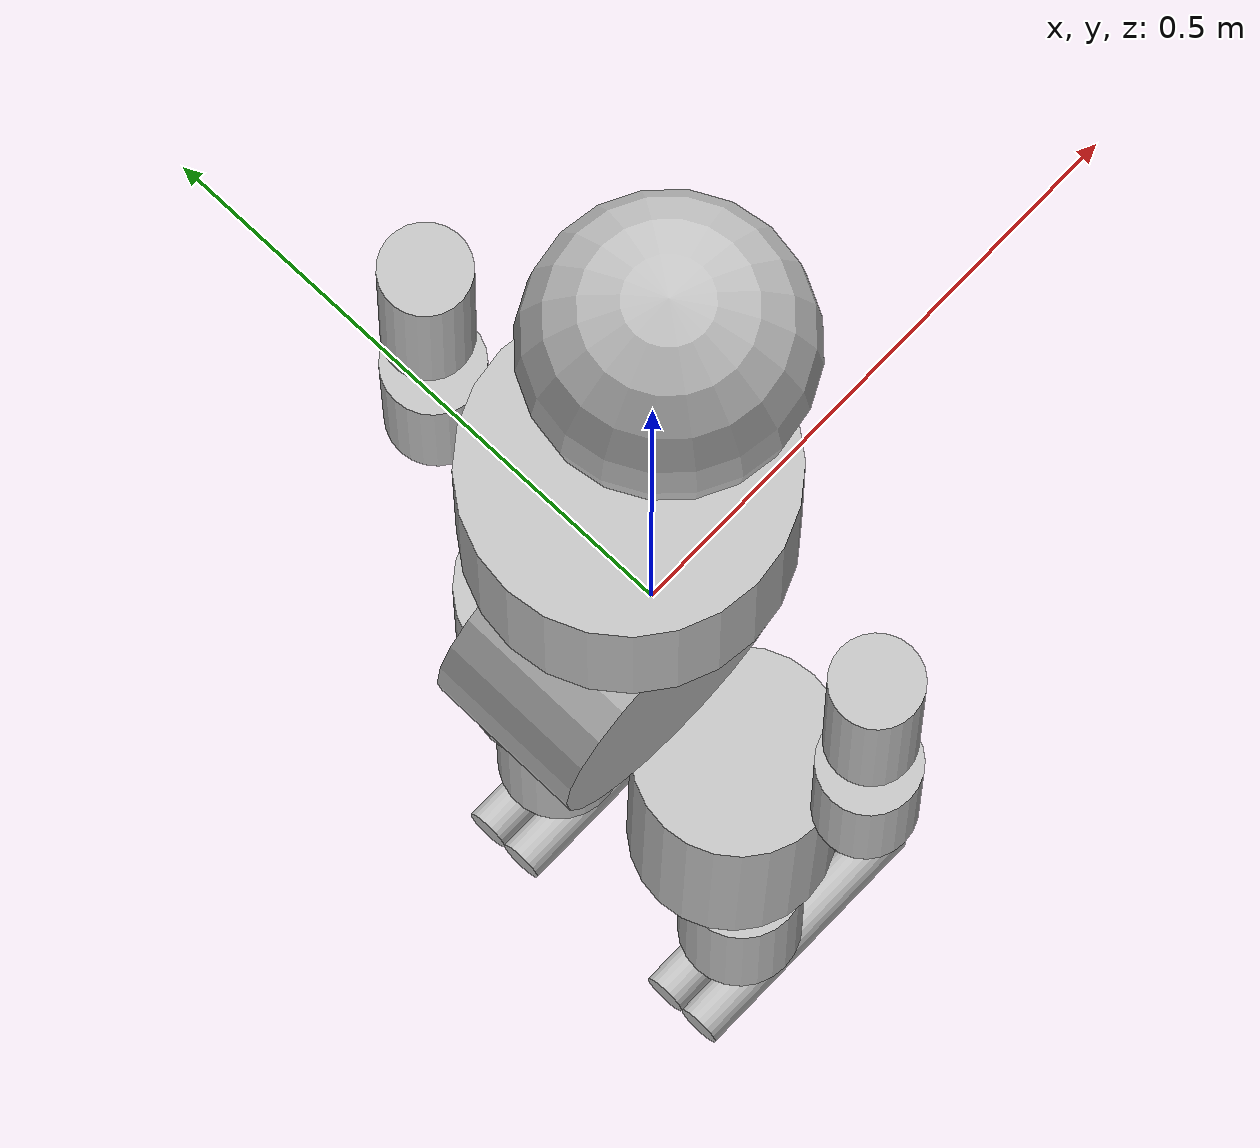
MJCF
<mujoco model="GR1T1_inspire_hand_simple_coll">
  <compiler angle="radian" autolimits="true" />
  <statistic center="-0.00685567 0 -0.14254" extent="1.76443" meansize="0.0362973" />
  <asset>
    <mesh file="/home/mao/Github_Project/humanoid-gym/resources/robots/gr1t1/urdf/../meshes/IMU_link.STL" name="IMU_link" />
  </asset>
  <worldbody>
    <body name="base_link">
      <inertial diaginertia="0.0357335 0.0311265 0.01048" mass="3.84" pos="-0.06584 -9.765e-05 -0.01434" quat="0.384085 0.384189 -0.593878 0.593453" />
      <joint name="base_link_free_joint" type="free" />
      <geom name="base_link.STL" pos="-0.0425829 0.000370042 0.00921009" quat="0.706838 -0.707359 0.00477667 0" rgba="0.752941 0.752941 0.752941 1" size="0.122394 0.0685504" type="cylinder" />
      <body name="left_thigh_roll_link" pos="-0.0025 0.105 -0.0276">
        <inertial diaginertia="0.00250664 0.0024263 0.00154406" mass="1.45" pos="-0.0327 9.169e-05 0.002323" quat="-0.0333877 0.695218 -0.0328245 0.717272" />
        <joint axis="1 0 0" name="left_hip_roll_joint" pos="0 0 0" range="-0.09 0.79" />
        <body name="left_thigh_yaw_link">
          <inertial diaginertia="0.0187495 0.0155538 0.00552366" mass="3.17" pos="-0.00019288 0.03547 -0.1073" quat="0.695263 0.0885308 -0.105597 0.705422" />
          <joint axis="0 0 1" name="left_hip_yaw_joint" pos="0 0 0" range="-0.7 0.7" />
          <body name="left_thigh_pitch_link" pos="0 0.0223 -0.1405">
            <inertial diaginertia="0.0726805 0.0722025 0.021167" mass="7.99" pos="0.001419 -0.02869 -0.05999" quat="0.563485 -0.0288779 0.0157908 0.82547" />
            <joint axis="0 1 0" name="left_hip_pitch_joint" pos="0 0 0" range="-1.75 0.7" />
            <geom name="left_thigh_pitch_link.STL" pos="0.000700051 -0.0301597 -0.167056" rgba="0.752941 0.752941 0.752941 1" size="0.0858769 0.124914" type="cylinder" />
            <body name="left_shank_pitch_link" pos="0 -0.0213 -0.36">
              <inertial diaginertia="0.00991684 0.0099128 0.000948263" mass="1.93" pos="0.001724 -3.024e-05 -0.1128" quat="0.933705 -0.00658684 -0.00149886 -0.357979" />
              <joint axis="0 1 0" name="left_knee_pitch_joint" pos="0 0 0" range="-0.09 1.92" />
              <geom name="left_shank_pitch_link.STL" pos="-1.65901e-05 -0.000842547 -0.174691" quat="0.00125538 -0.202712 0.979238 0" rgba="0.752941 0.752941 0.752941 1" size="0.0533214 0.090385" type="cylinder" />
              <body name="left_foot_pitch_link" pos="0 0 -0.34">
                <inertial diaginertia="0.00248837 0.00231998 0.000379658" mass="0.538" pos="0.0284 0.00121 -0.0293" quat="0.00525623 0.735579 0.00949935 0.677352" />
                <joint axis="0 1 0" name="left_ankle_pitch_joint" pos="0 0 0" range="-1.05 0.52" />
                <body name="left_foot_roll_link">
                  <inertial diaginertia="0.00248837 0.00231998 0.000379658" mass="0.538" pos="0.0284 0.00121 -0.0293" quat="0.00525623 0.735579 0.00949935 0.677352" />
                  <joint axis="1 0 0" name="left_ankle_roll_joint" pos="0 0 0" range="-0.44 0.44" />
                  <geom name="l_foot_1" pos="0.05 0.02 -0.035" quat="0.707105 0 0.707108 0" rgba="0.752941 0.752941 0.752941 1" size="0.02 0.12" type="cylinder" />
                  <geom name="l_foot_2" pos="0.05 -0.02 -0.035" quat="0.707105 0 0.707108 0" rgba="0.752941 0.752941 0.752941 1" size="0.02 0.12" type="cylinder" />
                </body>
              </body>
            </body>
          </body>
        </body>
      </body>
      <body name="right_thigh_roll_link" pos="-0.0025 -0.105 -0.0276">
        <inertial diaginertia="0.00252461 0.00244444 0.00154395" mass="1.45" pos="-0.0325 -7.432e-05 0.002322" quat="0.0358186 0.695351 0.0278322 0.717238" />
        <joint axis="1 0 0" name="right_hip_roll_joint" pos="0 0 0" range="-0.79 0.09" />
        <body name="right_thigh_yaw_link">
          <inertial diaginertia="0.0187501 0.0155492 0.00552367" mass="3.17" pos="-0.0001289 -0.03547 -0.1132" quat="0.707179 -0.100752 0.093415 0.693557" />
          <joint axis="0 0 1" name="right_hip_yaw_joint" pos="0 0 0" range="-0.7 0.7" />
          <body name="right_thigh_pitch_link" pos="0 -0.0223 -0.1405">
            <inertial diaginertia="0.0727223 0.0722714 0.0211863" mass="7.99" pos="0.00151 0.02868 -0.0598" quat="0.818776 0.0150828 -0.0284695 0.573208" />
            <joint axis="0 1 0" name="right_hip_pitch_joint" pos="0 0 0" range="-1.75 0.7" />
            <geom name="right_thigh_pitch_link.STL" pos="-0.00212327 0.0301596 -0.167056" quat="0.999971 0.00269833 0.00706272 0" rgba="0.752941 0.752941 0.752941 1" size="0.085878 0.124911" type="cylinder" />
            <body name="right_shank_pitch_link" pos="0 0.0213 -0.36">
              <inertial diaginertia="0.00991496 0.00990498 0.000958362" mass="1.93" pos="0.00172 3.024e-05 -0.1128" quat="0.770863 0.00710581 -0.00190153 0.636959" />
              <joint axis="0 1 0" name="right_knee_pitch_joint" pos="0 0 0" range="-0.09 1.92" />
              <geom name="right_shank_pitch_link.STL" pos="-1.65901e-05 -0.000842557 -0.174699" rgba="0.752941 0.752941 0.752941 1" size="0.0533211 0.0903841" type="cylinder" />
              <body name="right_foot_pitch_link" pos="0 0 -0.34">
                <inertial diaginertia="0.00248439 0.00231997 0.000379631" mass="0.538" pos="0.0284 -0.00121 -0.0293" quat="-0.00543913 0.735629 -0.0096842 0.677293" />
                <joint axis="0 1 0" name="right_ankle_pitch_joint" pos="0 0 0" range="-1.05 0.52" />
                <body name="right_foot_roll_link">
                  <inertial diaginertia="0.00248439 0.00231997 0.000379631" mass="0.538" pos="0.0284 -0.00121 -0.0293" quat="-0.00543913 0.735629 -0.0096842 0.677293" />
                  <joint axis="1 0 0" name="right_ankle_roll_joint" pos="0 0 0" range="-0.44 0.44" />
                  <geom name="r_foot_1" pos="0.05 0.02 -0.035" quat="0.707105 0 0.707108 0" rgba="0.752941 0.752941 0.752941 1" size="0.02 0.12" type="cylinder" />
                  <geom name="r_foot_2" pos="0.05 -0.02 -0.035" quat="0.707105 0 0.707108 0" rgba="0.752941 0.752941 0.752941 1" size="0.02 0.12" type="cylinder" />
                </body>
              </body>
            </body>
          </body>
        </body>
      </body>
      <body name="waist_yaw_link">
        <inertial diaginertia="0.00303371 0.00290717 0.00146913" mass="1.49" pos="-0.002641 -0.009332 0.05066" quat="0.967239 0.191378 -0.0307135 0.163948" />
        <body name="waist_pitch_link" pos="0 0 0.0873">
          <inertial diaginertia="0.0045927 0.00458165 0.00180365" mass="1.62" pos="0.00451 -0.00439 0.0406" quat="0.531996 0.0125456 0.0669515 0.844003" />
          <body name="waist_roll_link" pos="0 0 0.081">
            <inertial diaginertia="0.001226 0.00120045 0.000886551" mass="0.91" pos="0.01038 -1.48e-06 0.01312" quat="0.31535 0.63338 0.631998 0.31617" />
            <body name="torso_link" pos="-0.00414 0 0.16071">
              <inertial diaginertia="0.0417958 0.03127 0.0253542" mass="6.4" pos="-0.00667 0.0001533 0.01837" quat="0.998658 0.00114289 0.0517712 0.000838218" />
              <geom name="torso_link.STL" pos="-0.0158159 0.00519537 -0.0125205" rgba="0.752941 0.752941 0.752941 1" size="0.127427 0.080193" type="cylinder" />
              <body name="left_upper_arm_pitch_link" pos="0 0.10111 0.047149" quat="0.976296 0.216438 0 0">
                <inertial diaginertia="0.00203012 0.001957 0.000493887" mass="0.81" pos="0.00323 0.05324 0.000192" quat="0.707075 0.706425 -0.0197518 -0.0248718" />
                <body name="left_upper_arm_roll_link" pos="0 0.09515 0" quat="0.976296 -0.216438 0 0">
                  <inertial diaginertia="0.000886251 0.000862243 0.000234106" mass="0.5" pos="0.003427 0.01466 -0.02316" quat="0.893873 0.258142 0.0928721 -0.354583" />
                  <body name="left_upper_arm_yaw_link" pos="0 0.04 -0.07095">
                    <inertial diaginertia="0.00354401 0.00353998 0.000248202" mass="0.55" pos="5.47e-05 0.002013 -0.0852" quat="0.999468 0.0150745 0.000700882 -0.0289205" />
                    <geom name="left_upper_arm_yaw_link.STL" pos="3.94854e-05 -0.00089429 -0.07934" quat="0.00803418 -0.995528 0.0941277 0" rgba="0.752941 0.752941 0.752941 1" size="0.0362332 0.084942" type="cylinder" />
                    <body name="left_lower_arm_pitch_link" pos="0 0 -0.1751">
                      <inertial diaginertia="0.000297331 0.0002916 9.64688e-05" mass="0.32" pos="3.31e-06 0.007846 -0.02549" quat="0.703002 -0.0891082 0.088925 0.699957" />
                      <body name="left_hand_yaw_link" pos="0 5.033e-05 -0.05395">
                        <inertial diaginertia="0.00186712 0.00186313 0.00032085" mass="0.73" pos="-2.923e-05 0.002124 -0.06117" quat="0.998548 0.00515378 -0.00372064 0.0534915" />
                        <geom name="left_hand_yaw_link.STL" pos="0.00108925 -0.00154111 -0.0760429" rgba="0.752941 0.752941 0.752941 1" size="0.0415719 0.0695937" type="cylinder" />
                        <body name="left_hand_roll_link" pos="0 0 -0.18765">
                          <inertial diaginertia="1.01694e-05 8.75063e-06 5.38e-06" mass="0.02955" pos="0 0.001292 -0.01174" quat="0.579981 0.404502 0.579981 0.404502" />
                          <body name="left_hand_pitch_link">
                            <inertial diaginertia="1.01694e-05 8.75063e-06 5.38e-06" mass="0.02955" pos="0 0.001292 -0.01174" quat="0.579981 0.404502 0.579981 0.404502" />
                            <body name="left_end_effector_link">
                              <body name="L_hand_base_link" pos="0 0 -0.022">
                                <inertial diaginertia="0.000123583 8.41243e-05 7.6759e-05" mass="0.14143" pos="-0.002551 -0.066047 -0.0019357" quat="0.992433 0.118422 0.021189 0.0245586" />
                                <body name="L_thumb_proximal_base" pos="0.02045 -0.01696 -0.0691" quat="0.000796327 1 0 0">
                                  <inertial diaginertia="8.66031e-08 6.87331e-08 4.94199e-08" mass="0.0018869" pos="-0.0048817 0.00038782 -0.00722" quat="0.445981 0.352284 0.495833 0.656617" />
                                  <body name="L_thumb_proximal" pos="0.0099867 0.0098242 -0.0089" quat="0.704571 -0.704573 -0.0598169 0.0598167">
                                    <inertial diaginertia="2.78701e-06 2.44024e-06 8.6466e-07" mass="0.0066101" pos="0.021936 -0.01279 -0.0080386" quat="0.25452 0.660687 -0.251949 0.659723" />
                                    <body name="L_thumb_intermediate" pos="0.04407 -0.034553 -0.0008">
                                      <inertial diaginertia="4.6532e-07 4.48114e-07 2.45646e-07" mass="0.0037844" pos="0.0095531 0.0016282 -0.0072002" quat="0.30738 0.636732 -0.307526 0.636803" />
                                      <body name="L_thumb_distal" pos="0.020248 -0.010156 -0.0012">
                                        <inertial diaginertia="2.0026e-07 1.95246e-07 8.1594e-08" mass="0.003344" pos="0.0092888 -0.004953 -0.0060033" quat="0.266264 0.65596 -0.262836 0.655544" />
                                        <body name="L_thumb_tip" pos="0.015 -0.013 -0.004" />
                                      </body>
                                    </body>
                                  </body>
                                </body>
                                <body name="L_index_proximal" pos="0.032268 0.00028533 -0.13653" quat="0.491196 0.50865 0.491199 0.50865">
                                  <inertial diaginertia="6.9402e-07 6.62904e-07 2.10916e-07" mass="0.0042405" pos="0.0012971 -0.011934 -0.0059998" quat="0.489677 0.510115 -0.489692 0.510099" />
                                  <body name="L_index_intermediate" pos="-0.0024229 -0.032041 -0.001">
                                    <inertial diaginertia="7.8176e-07 7.72427e-07 8.47209e-08" mass="0.0045682" pos="0.0021753 -0.019567 -0.005" quat="0.528694 0.469555 -0.528694 0.469555" />
                                    <body name="L_index_tip" pos="-0.005 -0.04 -0.004" />
                                  </body>
                                </body>
                                <body name="L_middle_proximal" pos="0.01295 0.00028533 -0.1371" quat="0.499998 0.5 0.500002 0.5">
                                  <inertial diaginertia="6.9402e-07 6.62904e-07 2.10916e-07" mass="0.0042405" pos="0.0012971 -0.011934 -0.0059999" quat="0.489677 0.510115 -0.489692 0.510099" />
                                  <body name="L_middle_intermediate" pos="-0.0024229 -0.032041 -0.001">
                                    <inertial diaginertia="9.8385e-07 9.73288e-07 9.14016e-08" mass="0.0050397" pos="0.001921 -0.020796 -0.0049999" quat="0.531603 0.466115 -0.531728 0.466262" />
                                    <body name="L_middle_tip" pos="-0.005 -0.045 -0.004" />
                                  </body>
                                </body>
                                <body name="L_ring_proximal" pos="-0.0062872 0.00028533 -0.13691" quat="0.512915 0.48674 0.512919 0.48674">
                                  <inertial diaginertia="6.9402e-07 6.62904e-07 2.10916e-07" mass="0.0042405" pos="0.0012971 -0.011934 -0.0059999" quat="0.489677 0.510114 -0.489692 0.510099" />
                                  <body name="L_ring_intermediate" pos="-0.0024229 -0.032041 -0.001">
                                    <inertial diaginertia="7.8176e-07 7.72437e-07 8.47208e-08" mass="0.0045682" pos="0.0021753 -0.019567 -0.005" quat="0.528694 0.469556 -0.528694 0.469556" />
                                    <body name="L_ring_tip" pos="-0.002 -0.04 -0.004" />
                                  </body>
                                </body>
                                <body name="L_pinky_proximal" pos="-0.025488 0.00028533 -0.13571" quat="0.525481 0.473147 0.525485 0.473147">
                                  <inertial diaginertia="6.9402e-07 6.62904e-07 2.10916e-07" mass="0.0042405" pos="0.0012971 -0.011934 -0.0059999" quat="0.489677 0.510114 -0.489692 0.510099" />
                                  <body name="L_pinky_intermediate" pos="-0.0024229 -0.032041 -0.001">
                                    <inertial diaginertia="4.4881e-07 4.43809e-07 6.5736e-08" mass="0.0036036" pos="0.0024788 -0.016208 -0.0050001" quat="0.526797 0.471683 -0.526793 0.471687" />
                                    <body name="L_pinky_tip" pos="-0.002 -0.032 -0.004" />
                                  </body>
                                </body>
                              </body>
                            </body>
                          </body>
                        </body>
                      </body>
                    </body>
                  </body>
                </body>
              </body>
              <body name="right_upper_arm_pitch_link" pos="0 -0.10111 0.047149" quat="0.976296 -0.216438 0 0">
                <inertial diaginertia="0.00203703 0.00196 0.000491967" mass="0.81" pos="0.00324 -0.0533 0.000185" quat="0.7064 0.707006 0.0228604 0.0248708" />
                <body name="right_upper_arm_roll_link" pos="0 -0.09515 0" quat="0.976296 0.216438 0 0">
                  <inertial diaginertia="0.000886565 0.000862499 0.000234036" mass="0.5" pos="0.00342 -0.0147 -0.0232" quat="0.892464 -0.257881 0.09389 0.358036" />
                  <body name="right_upper_arm_yaw_link" pos="0 -0.04 -0.07095">
                    <inertial diaginertia="0.00354301 0.00353897 0.000248224" mass="0.55" pos="7.6e-05 -0.002032 -0.08519" quat="0.999725 -0.0150371 -4.36925e-05 -0.0179929" />
                    <geom name="right_upper_arm_yaw_link.STL" pos="3.94854e-05 0.00089429 -0.07934" rgba="0.752941 0.752941 0.752941 1" size="0.0362332 0.084942" type="cylinder" />
                    <body name="right_lower_arm_pitch_link" pos="0 0 -0.1751">
                      <inertial diaginertia="0.000297199 0.0002914 9.65012e-05" mass="0.32" pos="-1.69e-06 -0.007855 -0.02549" quat="0.702814 0.0890955 -0.0887771 0.700167" />
                      <body name="right_hand_yaw_link" pos="0 -5.033e-05 -0.05395">
                        <inertial diaginertia="0.00186612 0.00186214 0.00032084" mass="0.73" pos="3.9e-05 -0.00212 -0.06117" quat="0.998577 -0.00525175 0.0038125 0.0529257" />
                        <geom name="right_hand_yaw_link.STL" pos="0.00108925 0.000641114 -0.0760429" rgba="0.752941 0.752941 0.752941 1" size="0.0415719 0.0695937" type="cylinder" />
                        <body name="right_hand_roll_link" pos="0 0 -0.18765">
                          <inertial diaginertia="1.01694e-05 8.75063e-06 5.38e-06" mass="0.0295" pos="0 -0.00129 -0.0117" quat="0.404502 0.579981 0.404502 0.579981" />
                          <body name="right_hand_pitch_link">
                            <inertial diaginertia="1.01694e-05 8.75063e-06 5.38e-06" mass="0.0295" pos="0 -0.00129 -0.0117" quat="0.404502 0.579981 0.404502 0.579981" />
                            <body name="right_end_effector_link">
                              <body name="R_hand_base_link" pos="0 0 -0.022">
                                <inertial diaginertia="0.000122991 8.41186e-05 7.61951e-05" mass="0.14143" pos="-0.0025264 -0.066047 0.0019598" quat="0.993005 -0.113528 -0.0210604 0.0246792" />
                                <body name="R_thumb_proximal_base" pos="0.02045 0.01696 -0.0691" quat="-3.67321e-06 0 1 0">
                                  <inertial diaginertia="8.66026e-08 6.8732e-08 4.94194e-08" mass="0.0018869" pos="-0.0048064 0.0009382 -0.00757" quat="0.515015 0.680854 0.408023 0.323596" />
                                  <body name="R_thumb_proximal" pos="-0.0088099 0.010892 -0.00925" quat="0.0996843 0.0996847 0.700046 0.700044">
                                    <inertial diaginertia="2.78601e-06 2.43933e-06 8.64566e-07" mass="0.0066075" pos="0.021932 0.012785 -0.0080386" quat="-0.254474 0.660716 0.251893 0.659733" />
                                    <body name="R_thumb_intermediate" pos="0.04407 0.034553 -0.0008">
                                      <inertial diaginertia="4.6531e-07 4.48089e-07 2.45661e-07" mass="0.0037847" pos="0.0095544 -0.0016282 -0.0071997" quat="0.636718 0.307389 -0.636802 0.307548" />
                                      <body name="R_thumb_distal" pos="0.020248 0.010156 -0.0012">
                                        <inertial diaginertia="2.0026e-07 1.95247e-07 8.1593e-08" mass="0.0033441" pos="0.0092888 0.0049529 -0.0060033" quat="-0.266294 0.655967 0.262806 0.655537" />
                                        <body name="R_thumb_tip" pos="0.015 0.013 -0.004" />
                                      </body>
                                    </body>
                                  </body>
                                </body>
                                <body name="R_index_proximal" pos="0.032268 0.00028533 -0.13653" quat="0.508647 -0.491199 0.491201 -0.508648">
                                  <inertial diaginertia="6.9398e-07 6.62871e-07 2.10909e-07" mass="0.0042403" pos="0.0012259 0.011942 -0.0060001" quat="0.50867 0.49121 -0.508643 0.491172" />
                                  <body name="R_index_intermediate" pos="-0.0026138 0.032026 -0.001">
                                    <inertial diaginertia="7.8179e-07 7.72465e-07 8.47212e-08" mass="0.0045683" pos="0.0019697 0.019589 -0.005" quat="0.466773 0.531152 -0.466773 0.531153" />
                                    <body name="R_index_tip" pos="-0.005 0.04 -0.004" />
                                  </body>
                                </body>
                                <body name="R_middle_proximal" pos="0.01295 0.00028533 -0.1371" quat="0.499998 -0.5 0.500002 -0.5">
                                  <inertial diaginertia="6.9397e-07 6.62865e-07 2.10915e-07" mass="0.0042403" pos="0.001297 0.011934 -0.0060001" quat="0.510131 0.489693 -0.510105 0.489653" />
                                  <body name="R_middle_intermediate" pos="-0.0024229 0.032041 -0.001">
                                    <inertial diaginertia="9.8384e-07 9.73279e-07 9.14014e-08" mass="0.0050396" pos="0.001921 0.020796 -0.005" quat="0.466148 0.531627 -0.466229 0.531705" />
                                    <body name="R_middle_tip" pos="-0.005 0.045 -0.004" />
                                  </body>
                                </body>
                                <body name="R_ring_proximal" pos="-0.0062872 0.00028533 -0.13691" quat="0.486728 -0.512927 0.512929 -0.48673">
                                  <inertial diaginertia="6.9397e-07 6.62865e-07 2.10915e-07" mass="0.0042403" pos="0.001297 0.011934 -0.0060002" quat="0.510129 0.489691 -0.510107 0.489654" />
                                  <body name="R_ring_intermediate" pos="-0.0024229 0.032041 -0.001">
                                    <inertial diaginertia="7.8177e-07 7.72448e-07 8.4722e-08" mass="0.0045683" pos="0.0021753 0.019567 -0.005" quat="0.469554 0.528695 -0.469554 0.528695" />
                                    <body name="R_ring_tip" pos="-0.002 0.04 -0.004" />
                                  </body>
                                </body>
                                <body name="R_pinky_proximal" pos="-0.025488 0.00028533 -0.13571" quat="0.47357 -0.525099 0.525101 -0.473572">
                                  <inertial diaginertia="6.9397e-07 6.62865e-07 2.10915e-07" mass="0.0042403" pos="0.001297 0.011934 -0.0060001" quat="0.51013 0.489693 -0.510106 0.489653" />
                                  <body name="R_pinky_intermediate" pos="-0.0024229 0.032041 -0.001">
                                    <inertial diaginertia="4.4867e-07 4.43723e-07 6.56538e-08" mass="0.0035996" pos="0.0024748 0.016203 -0.0050031" quat="0.47398 0.528862 -0.469291 0.524799" />
                                    <body name="R_pinky_tip" pos="-0.002 0.032 -0.004" />
                                  </body>
                                </body>
                              </body>
                            </body>
                          </body>
                        </body>
                      </body>
                    </body>
                  </body>
                </body>
              </body>
              <body name="head_yaw_link" pos="0 0 0.17339">
                <inertial diaginertia="0.000769225 0.000735883 0.000168892" mass="0.45" pos="-0.0001367 -0.000134 0.05313" quat="0.698092 -0.00588508 -0.00754886 0.715944" />
                <body name="head_roll_link" pos="0 -0.00105 0.14195">
                  <inertial diaginertia="2.08875e-05 2.00047e-05 1.56779e-05" mass="0.1267" pos="-3e-05 0.01418 -0.00267" quat="0.351424 0.150117 -0.834883 0.396152" />
                  <body name="head_pitch_link">
                    <inertial diaginertia="0.00165781 0.00141479 0.000966401" mass="0.45" pos="0.02654 0.002225 -0.01063" quat="0.0180722 0.851262 -0.0107447 0.52432" />
                    <geom name="head_pitch_link.STL" pos="0.0182811 0 -0.013362" rgba="0.752941 0.752941 0.752941 1" size="0.108687" />
                  </body>
                </body>
              </body>
            </body>
          </body>
        </body>
      </body>
      <body name="IMU_link" pos="-0.064772 0 -0.0596">
        <inertial diaginertia="1.44301e-05 1.199e-05 1.12099e-05" mass="0.05" pos="-0.0003275 0 -0.005737" quat="0 0.687028 0 0.726631" />
        <geom mesh="IMU_link" name="IMU_link.STL" rgba="0.752941 0.752941 0.752941 1" type="mesh" />
      </body>
    </body>
  </worldbody>
</mujoco>
